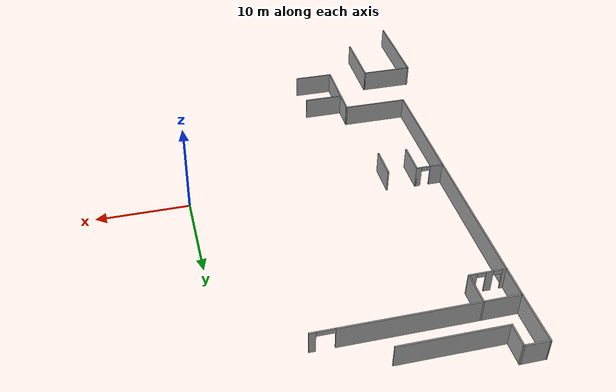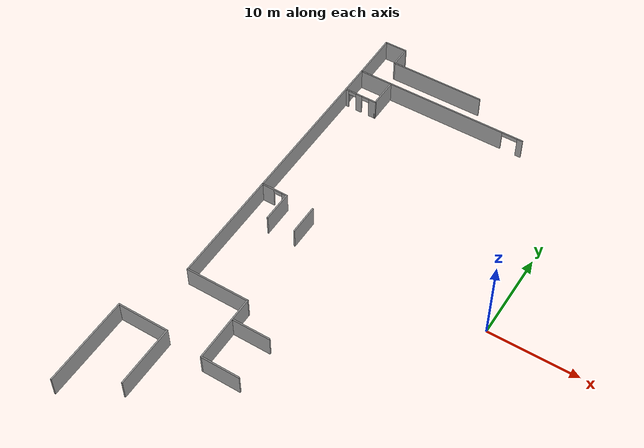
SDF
<sdf version="1.6">
 <model name="EDML">
  <link name="Wall_13">
   <pose>-17.6295 22.1597 0 0 -0 3.14157</pose>
   <visual name="Wall_13_Visual_2">
    <pose>-8.548 0 2.25 0 -0 0</pose>
    <geometry><box><size>1.814 0.15 0.5</size></box></geometry>
    <material>
     <script><uri>file://media/materials/scripts/gazebo.material</uri><name>Gazebo/Grey</name></script>
     <ambient>1 1 1 1</ambient>
     <diffuse>0.7 0.7 0.7 1</diffuse>
     <specular>0.01 0.01 0.01 1</specular>
     <emissive>0 0 0 1</emissive>
    </material>
   </visual>
   <visual name="Wall_13_Visual_0">
    <pose>-9.78149 0 1.25 0 -0 0</pose>
    <geometry><box><size>0.652987 0.15 2.5</size></box></geometry>
    <material>
     <script><uri>file://media/materials/scripts/gazebo.material</uri><name>Gazebo/Grey</name></script>
     <ambient>1 1 1 1</ambient>
     <diffuse>0.7 0.7 0.7 1</diffuse>
     <specular>0.01 0.01 0.01 1</specular>
     <emissive>0 0 0 1</emissive>
    </material>
   </visual>
   <visual name="Wall_13_Visual_1">
    <pose>1.23349 0 1.25 0 -0 0</pose>
    <geometry><box><size>17.749 0.15 2.5</size></box></geometry>
    <material>
     <script><uri>file://media/materials/scripts/gazebo.material</uri><name>Gazebo/Grey</name></script>
     <ambient>1 1 1 1</ambient>
     <diffuse>0.7 0.7 0.7 1</diffuse>
     <specular>0.01 0.01 0.01 1</specular>
     <emissive>0 0 0 1</emissive>
    </material>
   </visual>
   <collision name="Wall_13_Collision_0">
    <pose>-9.78149 0 1.25 0 -0 0</pose>
    <geometry><box><size>0.652987 0.15 2.5</size></box></geometry>
    <surface>
     <friction>
      <ode><mu>1</mu><mu2>1</mu2><fdir1>0 0 0</fdir1><slip1>0</slip1><slip2>0</slip2></ode>
      <torsional>
       <coefficient>1</coefficient>
       <patch_radius>0</patch_radius>
       <surface_radius>0</surface_radius>
       <use_patch_radius>1</use_patch_radius>
       <ode><slip>0</slip></ode>
      </torsional>
     </friction>
     <bounce><restitution_coefficient>0</restitution_coefficient><threshold>1e+06</threshold></bounce>
     <contact>
      <collide_without_contact>0</collide_without_contact>
      <collide_without_contact_bitmask>1</collide_without_contact_bitmask>
      <collide_bitmask>1</collide_bitmask>
      <ode>
       <soft_cfm>0</soft_cfm>
       <soft_erp>0.2</soft_erp>
       <kp>1e+13</kp>
       <kd>1</kd>
       <max_vel>0.01</max_vel>
       <min_depth>0</min_depth>
      </ode>
      <bullet>
       <split_impulse>1</split_impulse>
       <split_impulse_penetration_threshold>-0.01</split_impulse_penetration_threshold>
       <soft_cfm>0</soft_cfm>
       <soft_erp>0.2</soft_erp>
       <kp>1e+13</kp>
       <kd>1</kd>
      </bullet>
     </contact>
    </surface>
   </collision>
   <collision name="Wall_13_Collision_1">
    <pose>1.23349 0 1.25 0 -0 0</pose>
    <geometry><box><size>17.749 0.15 2.5</size></box></geometry>
    <surface>
     <friction>
      <ode><mu>1</mu><mu2>1</mu2><fdir1>0 0 0</fdir1><slip1>0</slip1><slip2>0</slip2></ode>
      <torsional>
       <coefficient>1</coefficient>
       <patch_radius>0</patch_radius>
       <surface_radius>0</surface_radius>
       <use_patch_radius>1</use_patch_radius>
       <ode><slip>0</slip></ode>
      </torsional>
     </friction>
     <bounce><restitution_coefficient>0</restitution_coefficient><threshold>1e+06</threshold></bounce>
     <contact>
      <collide_without_contact>0</collide_without_contact>
      <collide_without_contact_bitmask>1</collide_without_contact_bitmask>
      <collide_bitmask>1</collide_bitmask>
      <ode>
       <soft_cfm>0</soft_cfm>
       <soft_erp>0.2</soft_erp>
       <kp>1e+13</kp>
       <kd>1</kd>
       <max_vel>0.01</max_vel>
       <min_depth>0</min_depth>
      </ode>
      <bullet>
       <split_impulse>1</split_impulse>
       <split_impulse_penetration_threshold>-0.01</split_impulse_penetration_threshold>
       <soft_cfm>0</soft_cfm>
       <soft_erp>0.2</soft_erp>
       <kp>1e+13</kp>
       <kd>1</kd>
      </bullet>
     </contact>
    </surface>
   </collision>
   <collision name="Wall_13_Collision_2">
    <pose>-8.548 0 2.25 0 -0 0</pose>
    <geometry><box><size>1.814 0.15 0.5</size></box></geometry>
    <surface>
     <friction>
      <ode><mu>1</mu><mu2>1</mu2><fdir1>0 0 0</fdir1><slip1>0</slip1><slip2>0</slip2></ode>
      <torsional>
       <coefficient>1</coefficient>
       <patch_radius>0</patch_radius>
       <surface_radius>0</surface_radius>
       <use_patch_radius>1</use_patch_radius>
       <ode><slip>0</slip></ode>
      </torsional>
     </friction>
     <bounce><restitution_coefficient>0</restitution_coefficient><threshold>1e+06</threshold></bounce>
     <contact>
      <collide_without_contact>0</collide_without_contact>
      <collide_without_contact_bitmask>1</collide_without_contact_bitmask>
      <collide_bitmask>1</collide_bitmask>
      <ode>
       <soft_cfm>0</soft_cfm>
       <soft_erp>0.2</soft_erp>
       <kp>1e+13</kp>
       <kd>1</kd>
       <max_vel>0.01</max_vel>
       <min_depth>0</min_depth>
      </ode>
      <bullet>
       <split_impulse>1</split_impulse>
       <split_impulse_penetration_threshold>-0.01</split_impulse_penetration_threshold>
       <soft_cfm>0</soft_cfm>
       <soft_erp>0.2</soft_erp>
       <kp>1e+13</kp>
       <kd>1</kd>
      </bullet>
     </contact>
    </surface>
   </collision>
  </link>
  <link name="Wall_144">
   <pose>-23.8745 20.4654 0 0 0 -1.5708</pose>
   <visual name="Wall_144_Visual">
    <pose>0 0 1.25 0 -0 0</pose>
    <geometry><box><size>3.539 0.15 2.5</size></box></geometry>
    <material>
     <script><uri>file://media/materials/scripts/gazebo.material</uri><name>Gazebo/Grey</name></script>
     <ambient>1 1 1 1</ambient>
     <diffuse>0.7 0.7 0.7 1</diffuse>
     <specular>0.01 0.01 0.01 1</specular>
     <emissive>0 0 0 1</emissive>
    </material>
   </visual>
   <collision name="Wall_144_Collision">
    <pose>0 0 1.25 0 -0 0</pose>
    <geometry><box><size>3.539 0.15 2.5</size></box></geometry>
    <surface>
     <friction>
      <ode><mu>1</mu><mu2>1</mu2><fdir1>0 0 0</fdir1><slip1>0</slip1><slip2>0</slip2></ode>
      <torsional>
       <coefficient>1</coefficient>
       <patch_radius>0</patch_radius>
       <surface_radius>0</surface_radius>
       <use_patch_radius>1</use_patch_radius>
       <ode><slip>0</slip></ode>
      </torsional>
     </friction>
     <bounce><restitution_coefficient>0</restitution_coefficient><threshold>1e+06</threshold></bounce>
     <contact>
      <collide_without_contact>0</collide_without_contact>
      <collide_without_contact_bitmask>1</collide_without_contact_bitmask>
      <collide_bitmask>1</collide_bitmask>
      <ode>
       <soft_cfm>0</soft_cfm>
       <soft_erp>0.2</soft_erp>
       <kp>1e+13</kp>
       <kd>1</kd>
       <max_vel>0.01</max_vel>
       <min_depth>0</min_depth>
      </ode>
      <bullet>
       <split_impulse>1</split_impulse>
       <split_impulse_penetration_threshold>-0.01</split_impulse_penetration_threshold>
       <soft_cfm>0</soft_cfm>
       <soft_erp>0.2</soft_erp>
       <kp>1e+13</kp>
       <kd>1</kd>
      </bullet>
     </contact>
    </surface>
   </collision>
  </link>
  <link name="Wall_146">
   <pose>-27.6625 12.2514 0 0 -0 1.5708</pose>
   <visual name="Wall_146_Visual">
    <pose>0 0 1.25 0 -0 0</pose>
    <geometry><box><size>19.9666 0.15 2.5</size></box></geometry>
    <material>
     <script><uri>file://media/materials/scripts/gazebo.material</uri><name>Gazebo/Grey</name></script>
     <ambient>1 1 1 1</ambient>
     <diffuse>0.7 0.7 0.7 1</diffuse>
     <specular>0.01 0.01 0.01 1</specular>
     <emissive>0 0 0 1</emissive>
    </material>
   </visual>
   <collision name="Wall_146_Collision">
    <pose>0 0 1.25 0 -0 0</pose>
    <geometry><box><size>19.9666 0.15 2.5</size></box></geometry>
    <surface>
     <friction>
      <ode><mu>1</mu><mu2>1</mu2><fdir1>0 0 0</fdir1><slip1>0</slip1><slip2>0</slip2></ode>
      <torsional>
       <coefficient>1</coefficient>
       <patch_radius>0</patch_radius>
       <surface_radius>0</surface_radius>
       <use_patch_radius>1</use_patch_radius>
       <ode><slip>0</slip></ode>
      </torsional>
     </friction>
     <bounce><restitution_coefficient>0</restitution_coefficient><threshold>1e+06</threshold></bounce>
     <contact>
      <collide_without_contact>0</collide_without_contact>
      <collide_without_contact_bitmask>1</collide_without_contact_bitmask>
      <collide_bitmask>1</collide_bitmask>
      <ode>
       <soft_cfm>0</soft_cfm>
       <soft_erp>0.2</soft_erp>
       <kp>1e+13</kp>
       <kd>1</kd>
       <max_vel>0.01</max_vel>
       <min_depth>0</min_depth>
      </ode>
      <bullet>
       <split_impulse>1</split_impulse>
       <split_impulse_penetration_threshold>-0.01</split_impulse_penetration_threshold>
       <soft_cfm>0</soft_cfm>
       <soft_erp>0.2</soft_erp>
       <kp>1e+13</kp>
       <kd>1</kd>
      </bullet>
     </contact>
    </surface>
   </collision>
  </link>
  <link name="Wall_156">
   <pose>-25.7685 18.7709 0 0 -0 3.14159</pose>
   <visual name="Wall_156_Visual_0">
    <pose>-1.52296 0 1.25 0 -0 0</pose>
    <geometry><box><size>0.892081 0.15 2.5</size></box></geometry>
    <material>
     <script><uri>file://media/materials/scripts/gazebo.material</uri><name>Gazebo/Grey</name></script>
     <ambient>1 1 1 1</ambient>
     <diffuse>0.7 0.7 0.7 1</diffuse>
     <specular>0.01 0.01 0.01 1</specular>
     <emissive>0 0 0 1</emissive>
    </material>
   </visual>
   <visual name="Wall_156_Visual_1">
    <pose>0.192223 0 1.25 0 -0 0</pose>
    <geometry><box><size>0.738283 0.15 2.5</size></box></geometry>
    <material>
     <script><uri>file://media/materials/scripts/gazebo.material</uri><name>Gazebo/Grey</name></script>
     <ambient>1 1 1 1</ambient>
     <diffuse>0.7 0.7 0.7 1</diffuse>
     <specular>0.01 0.01 0.01 1</specular>
     <emissive>0 0 0 1</emissive>
    </material>
   </visual>
   <visual name="Wall_156_Visual_2">
    <pose>1.71518 0 1.25 0 -0 0</pose>
    <geometry><box><size>0.507636 0.15 2.5</size></box></geometry>
    <material>
     <script><uri>file://media/materials/scripts/gazebo.material</uri><name>Gazebo/Grey</name></script>
     <ambient>1 1 1 1</ambient>
     <diffuse>0.7 0.7 0.7 1</diffuse>
     <specular>0.01 0.01 0.01 1</specular>
     <emissive>0 0 0 1</emissive>
    </material>
   </visual>
   <visual name="Wall_156_Visual_3">
    <pose>-0.626919 0 2.25 0 -0 0</pose>
    <geometry><box><size>0.9 0.15 0.5</size></box></geometry>
    <material>
     <script><uri>file://media/materials/scripts/gazebo.material</uri><name>Gazebo/Grey</name></script>
     <ambient>1 1 1 1</ambient>
     <diffuse>0.7 0.7 0.7 1</diffuse>
     <specular>0.01 0.01 0.01 1</specular>
     <emissive>0 0 0 1</emissive>
    </material>
   </visual>
   <visual name="Wall_156_Visual_4">
    <pose>1.01136 0 2.25 0 -0 0</pose>
    <geometry><box><size>0.9 0.15 0.5</size></box></geometry>
    <material>
     <script><uri>file://media/materials/scripts/gazebo.material</uri><name>Gazebo/Grey</name></script>
     <ambient>1 1 1 1</ambient>
     <diffuse>0.7 0.7 0.7 1</diffuse>
     <specular>0.01 0.01 0.01 1</specular>
     <emissive>0 0 0 1</emissive>
    </material>
   </visual>
   <collision name="Wall_156_Collision_1">
    <pose>0.192223 0 1.25 0 -0 0</pose>
    <geometry><box><size>0.738283 0.15 2.5</size></box></geometry>
    <surface>
     <friction>
      <ode><mu>1</mu><mu2>1</mu2><fdir1>0 0 0</fdir1><slip1>0</slip1><slip2>0</slip2></ode>
      <torsional>
       <coefficient>1</coefficient>
       <patch_radius>0</patch_radius>
       <surface_radius>0</surface_radius>
       <use_patch_radius>1</use_patch_radius>
       <ode><slip>0</slip></ode>
      </torsional>
     </friction>
     <bounce><restitution_coefficient>0</restitution_coefficient><threshold>1e+06</threshold></bounce>
     <contact>
      <collide_without_contact>0</collide_without_contact>
      <collide_without_contact_bitmask>1</collide_without_contact_bitmask>
      <collide_bitmask>1</collide_bitmask>
      <ode>
       <soft_cfm>0</soft_cfm>
       <soft_erp>0.2</soft_erp>
       <kp>1e+13</kp>
       <kd>1</kd>
       <max_vel>0.01</max_vel>
       <min_depth>0</min_depth>
      </ode>
      <bullet>
       <split_impulse>1</split_impulse>
       <split_impulse_penetration_threshold>-0.01</split_impulse_penetration_threshold>
       <soft_cfm>0</soft_cfm>
       <soft_erp>0.2</soft_erp>
       <kp>1e+13</kp>
       <kd>1</kd>
      </bullet>
     </contact>
    </surface>
   </collision>
   <collision name="Wall_156_Collision_0">
    <pose>-1.52296 0 1.25 0 -0 0</pose>
    <geometry><box><size>0.892081 0.15 2.5</size></box></geometry>
    <surface>
     <friction>
      <ode><mu>1</mu><mu2>1</mu2><fdir1>0 0 0</fdir1><slip1>0</slip1><slip2>0</slip2></ode>
      <torsional>
       <coefficient>1</coefficient>
       <patch_radius>0</patch_radius>
       <surface_radius>0</surface_radius>
       <use_patch_radius>1</use_patch_radius>
       <ode><slip>0</slip></ode>
      </torsional>
     </friction>
     <bounce><restitution_coefficient>0</restitution_coefficient><threshold>1e+06</threshold></bounce>
     <contact>
      <collide_without_contact>0</collide_without_contact>
      <collide_without_contact_bitmask>1</collide_without_contact_bitmask>
      <collide_bitmask>1</collide_bitmask>
      <ode>
       <soft_cfm>0</soft_cfm>
       <soft_erp>0.2</soft_erp>
       <kp>1e+13</kp>
       <kd>1</kd>
       <max_vel>0.01</max_vel>
       <min_depth>0</min_depth>
      </ode>
      <bullet>
       <split_impulse>1</split_impulse>
       <split_impulse_penetration_threshold>-0.01</split_impulse_penetration_threshold>
       <soft_cfm>0</soft_cfm>
       <soft_erp>0.2</soft_erp>
       <kp>1e+13</kp>
       <kd>1</kd>
      </bullet>
     </contact>
    </surface>
   </collision>
   <collision name="Wall_156_Collision_2">
    <pose>1.71518 0 1.25 0 -0 0</pose>
    <geometry><box><size>0.507636 0.15 2.5</size></box></geometry>
    <surface>
     <friction>
      <ode><mu>1</mu><mu2>1</mu2><fdir1>0 0 0</fdir1><slip1>0</slip1><slip2>0</slip2></ode>
      <torsional>
       <coefficient>1</coefficient>
       <patch_radius>0</patch_radius>
       <surface_radius>0</surface_radius>
       <use_patch_radius>1</use_patch_radius>
       <ode><slip>0</slip></ode>
      </torsional>
     </friction>
     <bounce><restitution_coefficient>0</restitution_coefficient><threshold>1e+06</threshold></bounce>
     <contact>
      <collide_without_contact>0</collide_without_contact>
      <collide_without_contact_bitmask>1</collide_without_contact_bitmask>
      <collide_bitmask>1</collide_bitmask>
      <ode>
       <soft_cfm>0</soft_cfm>
       <soft_erp>0.2</soft_erp>
       <kp>1e+13</kp>
       <kd>1</kd>
       <max_vel>0.01</max_vel>
       <min_depth>0</min_depth>
      </ode>
      <bullet>
       <split_impulse>1</split_impulse>
       <split_impulse_penetration_threshold>-0.01</split_impulse_penetration_threshold>
       <soft_cfm>0</soft_cfm>
       <soft_erp>0.2</soft_erp>
       <kp>1e+13</kp>
       <kd>1</kd>
      </bullet>
     </contact>
    </surface>
   </collision>
   <collision name="Wall_156_Collision_3">
    <pose>-0.626919 0 2.25 0 -0 0</pose>
    <geometry><box><size>0.9 0.15 0.5</size></box></geometry>
    <surface>
     <friction>
      <ode><mu>1</mu><mu2>1</mu2><fdir1>0 0 0</fdir1><slip1>0</slip1><slip2>0</slip2></ode>
      <torsional>
       <coefficient>1</coefficient>
       <patch_radius>0</patch_radius>
       <surface_radius>0</surface_radius>
       <use_patch_radius>1</use_patch_radius>
       <ode><slip>0</slip></ode>
      </torsional>
     </friction>
     <bounce><restitution_coefficient>0</restitution_coefficient><threshold>1e+06</threshold></bounce>
     <contact>
      <collide_without_contact>0</collide_without_contact>
      <collide_without_contact_bitmask>1</collide_without_contact_bitmask>
      <collide_bitmask>1</collide_bitmask>
      <ode>
       <soft_cfm>0</soft_cfm>
       <soft_erp>0.2</soft_erp>
       <kp>1e+13</kp>
       <kd>1</kd>
       <max_vel>0.01</max_vel>
       <min_depth>0</min_depth>
      </ode>
      <bullet>
       <split_impulse>1</split_impulse>
       <split_impulse_penetration_threshold>-0.01</split_impulse_penetration_threshold>
       <soft_cfm>0</soft_cfm>
       <soft_erp>0.2</soft_erp>
       <kp>1e+13</kp>
       <kd>1</kd>
      </bullet>
     </contact>
    </surface>
   </collision>
   <collision name="Wall_156_Collision_4">
    <pose>1.01136 0 2.25 0 -0 0</pose>
    <geometry><box><size>0.9 0.15 0.5</size></box></geometry>
    <surface>
     <friction>
      <ode><mu>1</mu><mu2>1</mu2><fdir1>0 0 0</fdir1><slip1>0</slip1><slip2>0</slip2></ode>
      <torsional>
       <coefficient>1</coefficient>
       <patch_radius>0</patch_radius>
       <surface_radius>0</surface_radius>
       <use_patch_radius>1</use_patch_radius>
       <ode><slip>0</slip></ode>
      </torsional>
     </friction>
     <bounce><restitution_coefficient>0</restitution_coefficient><threshold>1e+06</threshold></bounce>
     <contact>
      <collide_without_contact>0</collide_without_contact>
      <collide_without_contact_bitmask>1</collide_without_contact_bitmask>
      <collide_bitmask>1</collide_bitmask>
      <ode>
       <soft_cfm>0</soft_cfm>
       <soft_erp>0.2</soft_erp>
       <kp>1e+13</kp>
       <kd>1</kd>
       <max_vel>0.01</max_vel>
       <min_depth>0</min_depth>
      </ode>
      <bullet>
       <split_impulse>1</split_impulse>
       <split_impulse_penetration_threshold>-0.01</split_impulse_penetration_threshold>
       <soft_cfm>0</soft_cfm>
       <soft_erp>0.2</soft_erp>
       <kp>1e+13</kp>
       <kd>1</kd>
      </bullet>
     </contact>
    </surface>
   </collision>
  </link>
  <link name="Wall_2">
   <pose>-30.7265 -22.6753 0 0 -0 1.5708</pose>
   <visual name="Wall_2_Visual">
    <pose>0 0 1.25 0 -0 0</pose>
    <geometry><box><size>10.14 0.15 2.5</size></box></geometry>
    <material>
     <script><uri>file://media/materials/scripts/gazebo.material</uri><name>Gazebo/Grey</name></script>
     <ambient>1 1 1 1</ambient>
     <diffuse>0.7 0.7 0.7 1</diffuse>
     <specular>0.01 0.01 0.01 1</specular>
     <emissive>0 0 0 1</emissive>
    </material>
   </visual>
   <collision name="Wall_2_Collision">
    <pose>0 0 1.25 0 -0 0</pose>
    <geometry><box><size>10.14 0.15 2.5</size></box></geometry>
    <surface>
     <friction>
      <ode><mu>1</mu><mu2>1</mu2><fdir1>0 0 0</fdir1><slip1>0</slip1><slip2>0</slip2></ode>
      <torsional>
       <coefficient>1</coefficient>
       <patch_radius>0</patch_radius>
       <surface_radius>0</surface_radius>
       <use_patch_radius>1</use_patch_radius>
       <ode><slip>0</slip></ode>
      </torsional>
     </friction>
     <bounce><restitution_coefficient>0</restitution_coefficient><threshold>1e+06</threshold></bounce>
     <contact>
      <collide_without_contact>0</collide_without_contact>
      <collide_without_contact_bitmask>1</collide_without_contact_bitmask>
      <collide_bitmask>1</collide_bitmask>
      <ode>
       <soft_cfm>0</soft_cfm>
       <soft_erp>0.2</soft_erp>
       <kp>1e+13</kp>
       <kd>1</kd>
       <max_vel>0.01</max_vel>
       <min_depth>0</min_depth>
      </ode>
      <bullet>
       <split_impulse>1</split_impulse>
       <split_impulse_penetration_threshold>-0.01</split_impulse_penetration_threshold>
       <soft_cfm>0</soft_cfm>
       <soft_erp>0.2</soft_erp>
       <kp>1e+13</kp>
       <kd>1</kd>
      </bullet>
     </contact>
    </surface>
   </collision>
  </link>
  <link name="Wall_25">
   <pose>-27.6895 24.9147 0 0 -0 1.5806</pose>
   <visual name="Wall_25_Visual">
    <pose>0 0 1.25 0 -0 0</pose>
    <geometry><box><size>5.66 0.15 2.5</size></box></geometry>
    <material>
     <script><uri>file://media/materials/scripts/gazebo.material</uri><name>Gazebo/Grey</name></script>
     <ambient>1 1 1 1</ambient>
     <diffuse>0.7 0.7 0.7 1</diffuse>
     <specular>0.01 0.01 0.01 1</specular>
     <emissive>0 0 0 1</emissive>
    </material>
   </visual>
   <collision name="Wall_25_Collision">
    <pose>0 0 1.25 0 -0 0</pose>
    <geometry><box><size>5.66 0.15 2.5</size></box></geometry>
    <surface>
     <friction>
      <ode><mu>1</mu><mu2>1</mu2><fdir1>0 0 0</fdir1><slip1>0</slip1><slip2>0</slip2></ode>
      <torsional>
       <coefficient>1</coefficient>
       <patch_radius>0</patch_radius>
       <surface_radius>0</surface_radius>
       <use_patch_radius>1</use_patch_radius>
       <ode><slip>0</slip></ode>
      </torsional>
     </friction>
     <bounce><restitution_coefficient>0</restitution_coefficient><threshold>1e+06</threshold></bounce>
     <contact>
      <collide_without_contact>0</collide_without_contact>
      <collide_without_contact_bitmask>1</collide_without_contact_bitmask>
      <collide_bitmask>1</collide_bitmask>
      <ode>
       <soft_cfm>0</soft_cfm>
       <soft_erp>0.2</soft_erp>
       <kp>1e+13</kp>
       <kd>1</kd>
       <max_vel>0.01</max_vel>
       <min_depth>0</min_depth>
      </ode>
      <bullet>
       <split_impulse>1</split_impulse>
       <split_impulse_penetration_threshold>-0.01</split_impulse_penetration_threshold>
       <soft_cfm>0</soft_cfm>
       <soft_erp>0.2</soft_erp>
       <kp>1e+13</kp>
       <kd>1</kd>
      </bullet>
     </contact>
    </surface>
   </collision>
  </link>
  <link name="Wall_27">
   <pose>-26.4565 27.6695 0 0 -0 0</pose>
   <visual name="Wall_27_Visual">
    <pose>0 0 1.25 0 -0 0</pose>
    <geometry><box><size>2.67 0.15 2.5</size></box></geometry>
    <material>
     <script><uri>file://media/materials/scripts/gazebo.material</uri><name>Gazebo/Grey</name></script>
     <ambient>1 1 1 1</ambient>
     <diffuse>0.7 0.7 0.7 1</diffuse>
     <specular>0.01 0.01 0.01 1</specular>
     <emissive>0 0 0 1</emissive>
    </material>
   </visual>
   <collision name="Wall_27_Collision">
    <pose>0 0 1.25 0 -0 0</pose>
    <geometry><box><size>2.67 0.15 2.5</size></box></geometry>
    <surface>
     <friction>
      <ode><mu>1</mu><mu2>1</mu2><fdir1>0 0 0</fdir1><slip1>0</slip1><slip2>0</slip2></ode>
      <torsional>
       <coefficient>1</coefficient>
       <patch_radius>0</patch_radius>
       <surface_radius>0</surface_radius>
       <use_patch_radius>1</use_patch_radius>
       <ode><slip>0</slip></ode>
      </torsional>
     </friction>
     <bounce><restitution_coefficient>0</restitution_coefficient><threshold>1e+06</threshold></bounce>
     <contact>
      <collide_without_contact>0</collide_without_contact>
      <collide_without_contact_bitmask>1</collide_without_contact_bitmask>
      <collide_bitmask>1</collide_bitmask>
      <ode>
       <soft_cfm>0</soft_cfm>
       <soft_erp>0.2</soft_erp>
       <kp>1e+13</kp>
       <kd>1</kd>
       <max_vel>0.01</max_vel>
       <min_depth>0</min_depth>
      </ode>
      <bullet>
       <split_impulse>1</split_impulse>
       <split_impulse_penetration_threshold>-0.01</split_impulse_penetration_threshold>
       <soft_cfm>0</soft_cfm>
       <soft_erp>0.2</soft_erp>
       <kp>1e+13</kp>
       <kd>1</kd>
      </bullet>
     </contact>
    </surface>
   </collision>
  </link>
  <link name="Wall_31">
   <pose>-25.1965 26.4697 0 0 0 -1.57078</pose>
   <visual name="Wall_31_Visual">
    <pose>0 0 1.25 0 -0 0</pose>
    <geometry><box><size>2.55 0.15 2.5</size></box></geometry>
    <material>
     <script><uri>file://media/materials/scripts/gazebo.material</uri><name>Gazebo/Grey</name></script>
     <ambient>1 1 1 1</ambient>
     <diffuse>0.7 0.7 0.7 1</diffuse>
     <specular>0.01 0.01 0.01 1</specular>
     <emissive>0 0 0 1</emissive>
    </material>
   </visual>
   <collision name="Wall_31_Collision">
    <pose>0 0 1.25 0 -0 0</pose>
    <geometry><box><size>2.55 0.15 2.5</size></box></geometry>
    <surface>
     <friction>
      <ode><mu>1</mu><mu2>1</mu2><fdir1>0 0 0</fdir1><slip1>0</slip1><slip2>0</slip2></ode>
      <torsional>
       <coefficient>1</coefficient>
       <patch_radius>0</patch_radius>
       <surface_radius>0</surface_radius>
       <use_patch_radius>1</use_patch_radius>
       <ode><slip>0</slip></ode>
      </torsional>
     </friction>
     <bounce><restitution_coefficient>0</restitution_coefficient><threshold>1e+06</threshold></bounce>
     <contact>
      <collide_without_contact>0</collide_without_contact>
      <collide_without_contact_bitmask>1</collide_without_contact_bitmask>
      <collide_bitmask>1</collide_bitmask>
      <ode>
       <soft_cfm>0</soft_cfm>
       <soft_erp>0.2</soft_erp>
       <kp>1e+13</kp>
       <kd>1</kd>
       <max_vel>0.01</max_vel>
       <min_depth>0</min_depth>
      </ode>
      <bullet>
       <split_impulse>1</split_impulse>
       <split_impulse_penetration_threshold>-0.01</split_impulse_penetration_threshold>
       <soft_cfm>0</soft_cfm>
       <soft_erp>0.2</soft_erp>
       <kp>1e+13</kp>
       <kd>1</kd>
      </bullet>
     </contact>
    </surface>
   </collision>
  </link>
  <link name="Wall_32">
   <pose>-19.8035 25.2699 0 0 -0 0</pose>
   <visual name="Wall_32_Visual">
    <pose>0 0 1.25 0 -0 0</pose>
    <geometry><box><size>10.936 0.15 2.5</size></box></geometry>
    <material>
     <script><uri>file://media/materials/scripts/gazebo.material</uri><name>Gazebo/Grey</name></script>
     <ambient>1 1 1 1</ambient>
     <diffuse>0.7 0.7 0.7 1</diffuse>
     <specular>0.01 0.01 0.01 1</specular>
     <emissive>0 0 0 1</emissive>
    </material>
   </visual>
   <collision name="Wall_32_Collision">
    <pose>0 0 1.25 0 -0 0</pose>
    <geometry><box><size>10.936 0.15 2.5</size></box></geometry>
    <surface>
     <friction>
      <ode><mu>1</mu><mu2>1</mu2><fdir1>0 0 0</fdir1><slip1>0</slip1><slip2>0</slip2></ode>
      <torsional>
       <coefficient>1</coefficient>
       <patch_radius>0</patch_radius>
       <surface_radius>0</surface_radius>
       <use_patch_radius>1</use_patch_radius>
       <ode><slip>0</slip></ode>
      </torsional>
     </friction>
     <bounce><restitution_coefficient>0</restitution_coefficient><threshold>1e+06</threshold></bounce>
     <contact>
      <collide_without_contact>0</collide_without_contact>
      <collide_without_contact_bitmask>1</collide_without_contact_bitmask>
      <collide_bitmask>1</collide_bitmask>
      <ode>
       <soft_cfm>0</soft_cfm>
       <soft_erp>0.2</soft_erp>
       <kp>1e+13</kp>
       <kd>1</kd>
       <max_vel>0.01</max_vel>
       <min_depth>0</min_depth>
      </ode>
      <bullet>
       <split_impulse>1</split_impulse>
       <split_impulse_penetration_threshold>-0.01</split_impulse_penetration_threshold>
       <soft_cfm>0</soft_cfm>
       <soft_erp>0.2</soft_erp>
       <kp>1e+13</kp>
       <kd>1</kd>
      </bullet>
     </contact>
    </surface>
   </collision>
  </link>
  <link name="Wall_4">
   <pose>-27.8615 -17.6805 0 0 -0 0</pose>
   <visual name="Wall_4_Visual">
    <pose>0 0 1.25 0 -0 0</pose>
    <geometry><box><size>5.88 0.15 2.5</size></box></geometry>
    <material>
     <script><uri>file://media/materials/scripts/gazebo.material</uri><name>Gazebo/Grey</name></script>
     <ambient>1 1 1 1</ambient>
     <diffuse>0.7 0.7 0.7 1</diffuse>
     <specular>0.01 0.01 0.01 1</specular>
     <emissive>0 0 0 1</emissive>
    </material>
   </visual>
   <collision name="Wall_4_Collision">
    <pose>0 0 1.25 0 -0 0</pose>
    <geometry><box><size>5.88 0.15 2.5</size></box></geometry>
    <surface>
     <friction>
      <ode><mu>1</mu><mu2>1</mu2><fdir1>0 0 0</fdir1><slip1>0</slip1><slip2>0</slip2></ode>
      <torsional>
       <coefficient>1</coefficient>
       <patch_radius>0</patch_radius>
       <surface_radius>0</surface_radius>
       <use_patch_radius>1</use_patch_radius>
       <ode><slip>0</slip></ode>
      </torsional>
     </friction>
     <bounce><restitution_coefficient>0</restitution_coefficient><threshold>1e+06</threshold></bounce>
     <contact>
      <collide_without_contact>0</collide_without_contact>
      <collide_without_contact_bitmask>1</collide_without_contact_bitmask>
      <collide_bitmask>1</collide_bitmask>
      <ode>
       <soft_cfm>0</soft_cfm>
       <soft_erp>0.2</soft_erp>
       <kp>1e+13</kp>
       <kd>1</kd>
       <max_vel>0.01</max_vel>
       <min_depth>0</min_depth>
      </ode>
      <bullet>
       <split_impulse>1</split_impulse>
       <split_impulse_penetration_threshold>-0.01</split_impulse_penetration_threshold>
       <soft_cfm>0</soft_cfm>
       <soft_erp>0.2</soft_erp>
       <kp>1e+13</kp>
       <kd>1</kd>
      </bullet>
     </contact>
    </surface>
   </collision>
  </link>
  <link name="Wall_59">
   <pose>-20.5395 -14.5349 0 0 -0 1.5708</pose>
   <visual name="Wall_59_Visual">
    <pose>0 0 1.25 0 -0 0</pose>
    <geometry><box><size>7.74 0.15 2.5</size></box></geometry>
    <material>
     <script><uri>file://media/materials/scripts/gazebo.material</uri><name>Gazebo/Grey</name></script>
     <ambient>1 1 1 1</ambient>
     <diffuse>0.7 0.7 0.7 1</diffuse>
     <specular>0.01 0.01 0.01 1</specular>
     <emissive>0 0 0 1</emissive>
    </material>
   </visual>
   <collision name="Wall_59_Collision">
    <pose>0 0 1.25 0 -0 0</pose>
    <geometry><box><size>7.74 0.15 2.5</size></box></geometry>
    <surface>
     <friction>
      <ode><mu>1</mu><mu2>1</mu2><fdir1>0 0 0</fdir1><slip1>0</slip1><slip2>0</slip2></ode>
      <torsional>
       <coefficient>1</coefficient>
       <patch_radius>0</patch_radius>
       <surface_radius>0</surface_radius>
       <use_patch_radius>1</use_patch_radius>
       <ode><slip>0</slip></ode>
      </torsional>
     </friction>
     <bounce><restitution_coefficient>0</restitution_coefficient><threshold>1e+06</threshold></bounce>
     <contact>
      <collide_without_contact>0</collide_without_contact>
      <collide_without_contact_bitmask>1</collide_without_contact_bitmask>
      <collide_bitmask>1</collide_bitmask>
      <ode>
       <soft_cfm>0</soft_cfm>
       <soft_erp>0.2</soft_erp>
       <kp>1e+13</kp>
       <kd>1</kd>
       <max_vel>0.01</max_vel>
       <min_depth>0</min_depth>
      </ode>
      <bullet>
       <split_impulse>1</split_impulse>
       <split_impulse_penetration_threshold>-0.01</split_impulse_penetration_threshold>
       <soft_cfm>0</soft_cfm>
       <soft_erp>0.2</soft_erp>
       <kp>1e+13</kp>
       <kd>1</kd>
      </bullet>
     </contact>
    </surface>
   </collision>
  </link>
  <link name="Wall_6">
   <pose>-24.9965 -21.0705 0 0 0 -1.5708</pose>
   <visual name="Wall_6_Visual">
    <pose>0 0 1.25 0 -0 0</pose>
    <geometry><box><size>6.93 0.15 2.5</size></box></geometry>
    <material>
     <script><uri>file://media/materials/scripts/gazebo.material</uri><name>Gazebo/Grey</name></script>
     <ambient>1 1 1 1</ambient>
     <diffuse>0.7 0.7 0.7 1</diffuse>
     <specular>0.01 0.01 0.01 1</specular>
     <emissive>0 0 0 1</emissive>
    </material>
   </visual>
   <collision name="Wall_6_Collision">
    <pose>0 0 1.25 0 -0 0</pose>
    <geometry><box><size>6.93 0.15 2.5</size></box></geometry>
    <surface>
     <friction>
      <ode><mu>1</mu><mu2>1</mu2><fdir1>0 0 0</fdir1><slip1>0</slip1><slip2>0</slip2></ode>
      <torsional>
       <coefficient>1</coefficient>
       <patch_radius>0</patch_radius>
       <surface_radius>0</surface_radius>
       <use_patch_radius>1</use_patch_radius>
       <ode><slip>0</slip></ode>
      </torsional>
     </friction>
     <bounce><restitution_coefficient>0</restitution_coefficient><threshold>1e+06</threshold></bounce>
     <contact>
      <collide_without_contact>0</collide_without_contact>
      <collide_without_contact_bitmask>1</collide_without_contact_bitmask>
      <collide_bitmask>1</collide_bitmask>
      <ode>
       <soft_cfm>0</soft_cfm>
       <soft_erp>0.2</soft_erp>
       <kp>1e+13</kp>
       <kd>1</kd>
       <max_vel>0.01</max_vel>
       <min_depth>0</min_depth>
      </ode>
      <bullet>
       <split_impulse>1</split_impulse>
       <split_impulse_penetration_threshold>-0.01</split_impulse_penetration_threshold>
       <soft_cfm>0</soft_cfm>
       <soft_erp>0.2</soft_erp>
       <kp>1e+13</kp>
       <kd>1</kd>
      </bullet>
     </contact>
    </surface>
   </collision>
  </link>
  <link name="Wall_61">
   <pose>-18.4075 -18.3297 0 0 -0 0</pose>
   <visual name="Wall_61_Visual">
    <pose>0 0 1.25 0 -0 0</pose>
    <geometry><box><size>4.414 0.15 2.5</size></box></geometry>
    <material>
     <script><uri>file://media/materials/scripts/gazebo.material</uri><name>Gazebo/Grey</name></script>
     <ambient>1 1 1 1</ambient>
     <diffuse>0.7 0.7 0.7 1</diffuse>
     <specular>0.01 0.01 0.01 1</specular>
     <emissive>0 0 0 1</emissive>
    </material>
   </visual>
   <collision name="Wall_61_Collision">
    <pose>0 0 1.25 0 -0 0</pose>
    <geometry><box><size>4.414 0.15 2.5</size></box></geometry>
    <surface>
     <friction>
      <ode><mu>1</mu><mu2>1</mu2><fdir1>0 0 0</fdir1><slip1>0</slip1><slip2>0</slip2></ode>
      <torsional>
       <coefficient>1</coefficient>
       <patch_radius>0</patch_radius>
       <surface_radius>0</surface_radius>
       <use_patch_radius>1</use_patch_radius>
       <ode><slip>0</slip></ode>
      </torsional>
     </friction>
     <bounce><restitution_coefficient>0</restitution_coefficient><threshold>1e+06</threshold></bounce>
     <contact>
      <collide_without_contact>0</collide_without_contact>
      <collide_without_contact_bitmask>1</collide_without_contact_bitmask>
      <collide_bitmask>1</collide_bitmask>
      <ode>
       <soft_cfm>0</soft_cfm>
       <soft_erp>0.2</soft_erp>
       <kp>1e+13</kp>
       <kd>1</kd>
       <max_vel>0.01</max_vel>
       <min_depth>0</min_depth>
      </ode>
      <bullet>
       <split_impulse>1</split_impulse>
       <split_impulse_penetration_threshold>-0.01</split_impulse_penetration_threshold>
       <soft_cfm>0</soft_cfm>
       <soft_erp>0.2</soft_erp>
       <kp>1e+13</kp>
       <kd>1</kd>
      </bullet>
     </contact>
    </surface>
   </collision>
  </link>
  <link name="Wall_70">
   <pose>-18.4125 -13.3071 0 0 -0 0</pose>
   <visual name="Wall_70_Visual">
    <pose>0 0 1.25 0 -0 0</pose>
    <geometry><box><size>4.412 0.15 2.5</size></box></geometry>
    <material>
     <script><uri>file://media/materials/scripts/gazebo.material</uri><name>Gazebo/Grey</name></script>
     <ambient>1 1 1 1</ambient>
     <diffuse>0.7 0.7 0.7 1</diffuse>
     <specular>0.01 0.01 0.01 1</specular>
     <emissive>0 0 0 1</emissive>
    </material>
   </visual>
   <collision name="Wall_70_Collision">
    <pose>0 0 1.25 0 -0 0</pose>
    <geometry><box><size>4.412 0.15 2.5</size></box></geometry>
    <surface>
     <friction>
      <ode><mu>1</mu><mu2>1</mu2><fdir1>0 0 0</fdir1><slip1>0</slip1><slip2>0</slip2></ode>
      <torsional>
       <coefficient>1</coefficient>
       <patch_radius>0</patch_radius>
       <surface_radius>0</surface_radius>
       <use_patch_radius>1</use_patch_radius>
       <ode><slip>0</slip></ode>
      </torsional>
     </friction>
     <bounce><restitution_coefficient>0</restitution_coefficient><threshold>1e+06</threshold></bounce>
     <contact>
      <collide_without_contact>0</collide_without_contact>
      <collide_without_contact_bitmask>1</collide_without_contact_bitmask>
      <collide_bitmask>1</collide_bitmask>
      <ode>
       <soft_cfm>0</soft_cfm>
       <soft_erp>0.2</soft_erp>
       <kp>1e+13</kp>
       <kd>1</kd>
       <max_vel>0.01</max_vel>
       <min_depth>0</min_depth>
      </ode>
      <bullet>
       <split_impulse>1</split_impulse>
       <split_impulse_penetration_threshold>-0.01</split_impulse_penetration_threshold>
       <soft_cfm>0</soft_cfm>
       <soft_erp>0.2</soft_erp>
       <kp>1e+13</kp>
       <kd>1</kd>
      </bullet>
     </contact>
    </surface>
   </collision>
  </link>
  <link name="Wall_75">
   <pose>-24.101 -10.7401 0 0 -0 3.14159</pose>
   <visual name="Wall_75_Visual">
    <pose>0 0 1.25 0 -0 0</pose>
    <geometry><box><size>7.273 0.15 2.5</size></box></geometry>
    <material>
     <script><uri>file://media/materials/scripts/gazebo.material</uri><name>Gazebo/Grey</name></script>
     <ambient>1 1 1 1</ambient>
     <diffuse>0.7 0.7 0.7 1</diffuse>
     <specular>0.01 0.01 0.01 1</specular>
     <emissive>0 0 0 1</emissive>
    </material>
   </visual>
   <collision name="Wall_75_Collision">
    <pose>0 0 1.25 0 -0 0</pose>
    <geometry><box><size>7.273 0.15 2.5</size></box></geometry>
    <surface>
     <friction>
      <ode><mu>1</mu><mu2>1</mu2><fdir1>0 0 0</fdir1><slip1>0</slip1><slip2>0</slip2></ode>
      <torsional>
       <coefficient>1</coefficient>
       <patch_radius>0</patch_radius>
       <surface_radius>0</surface_radius>
       <use_patch_radius>1</use_patch_radius>
       <ode><slip>0</slip></ode>
      </torsional>
     </friction>
     <bounce><restitution_coefficient>0</restitution_coefficient><threshold>1e+06</threshold></bounce>
     <contact>
      <collide_without_contact>0</collide_without_contact>
      <collide_without_contact_bitmask>1</collide_without_contact_bitmask>
      <collide_bitmask>1</collide_bitmask>
      <ode>
       <soft_cfm>0</soft_cfm>
       <soft_erp>0.2</soft_erp>
       <kp>1e+13</kp>
       <kd>1</kd>
       <max_vel>0.01</max_vel>
       <min_depth>0</min_depth>
      </ode>
      <bullet>
       <split_impulse>1</split_impulse>
       <split_impulse_penetration_threshold>-0.01</split_impulse_penetration_threshold>
       <soft_cfm>0</soft_cfm>
       <soft_erp>0.2</soft_erp>
       <kp>1e+13</kp>
       <kd>1</kd>
      </bullet>
     </contact>
    </surface>
   </collision>
  </link>
  <link name="Wall_77">
   <pose>-27.6625 -4.19855 0 0 -0 1.5708</pose>
   <visual name="Wall_77_Visual">
    <pose>0 0 1.25 0 -0 0</pose>
    <geometry><box><size>13.233 0.15 2.5</size></box></geometry>
    <material>
     <script><uri>file://media/materials/scripts/gazebo.material</uri><name>Gazebo/Grey</name></script>
     <ambient>1 1 1 1</ambient>
     <diffuse>0.7 0.7 0.7 1</diffuse>
     <specular>0.01 0.01 0.01 1</specular>
     <emissive>0 0 0 1</emissive>
    </material>
   </visual>
   <collision name="Wall_77_Collision">
    <pose>0 0 1.25 0 -0 0</pose>
    <geometry><box><size>13.233 0.15 2.5</size></box></geometry>
    <surface>
     <friction>
      <ode><mu>1</mu><mu2>1</mu2><fdir1>0 0 0</fdir1><slip1>0</slip1><slip2>0</slip2></ode>
      <torsional>
       <coefficient>1</coefficient>
       <patch_radius>0</patch_radius>
       <surface_radius>0</surface_radius>
       <use_patch_radius>1</use_patch_radius>
       <ode><slip>0</slip></ode>
      </torsional>
     </friction>
     <bounce><restitution_coefficient>0</restitution_coefficient><threshold>1e+06</threshold></bounce>
     <contact>
      <collide_without_contact>0</collide_without_contact>
      <collide_without_contact_bitmask>1</collide_without_contact_bitmask>
      <collide_bitmask>1</collide_bitmask>
      <ode>
       <soft_cfm>0</soft_cfm>
       <soft_erp>0.2</soft_erp>
       <kp>1e+13</kp>
       <kd>1</kd>
       <max_vel>0.01</max_vel>
       <min_depth>0</min_depth>
      </ode>
      <bullet>
       <split_impulse>1</split_impulse>
       <split_impulse_penetration_threshold>-0.01</split_impulse_penetration_threshold>
       <soft_cfm>0</soft_cfm>
       <soft_erp>0.2</soft_erp>
       <kp>1e+13</kp>
       <kd>1</kd>
      </bullet>
     </contact>
    </surface>
   </collision>
  </link>
  <link name="Wall_79">
   <pose>-26.1745 2.34295 0 0 -0 0</pose>
   <visual name="Wall_79_Visual_0">
    <pose>-0.801238 0 1.25 0 -0 0</pose>
    <geometry><box><size>1.52352 0.15 2.5</size></box></geometry>
    <material>
     <script><uri>file://media/materials/scripts/gazebo.material</uri><name>Gazebo/Grey</name></script>
     <ambient>1 1 1 1</ambient>
     <diffuse>0.7 0.7 0.7 1</diffuse>
     <specular>0.01 0.01 0.01 1</specular>
     <emissive>0 0 0 1</emissive>
    </material>
   </visual>
   <visual name="Wall_79_Visual_1">
    <pose>1.24676 0 1.25 0 -0 0</pose>
    <geometry><box><size>0.632476 0.15 2.5</size></box></geometry>
    <material>
     <script><uri>file://media/materials/scripts/gazebo.material</uri><name>Gazebo/Grey</name></script>
     <ambient>1 1 1 1</ambient>
     <diffuse>0.7 0.7 0.7 1</diffuse>
     <specular>0.01 0.01 0.01 1</specular>
     <emissive>0 0 0 1</emissive>
    </material>
   </visual>
   <visual name="Wall_79_Visual_2">
    <pose>0.445524 0 2.25 0 -0 0</pose>
    <geometry><box><size>0.97 0.15 0.5</size></box></geometry>
    <material>
     <script><uri>file://media/materials/scripts/gazebo.material</uri><name>Gazebo/Grey</name></script>
     <ambient>1 1 1 1</ambient>
     <diffuse>0.7 0.7 0.7 1</diffuse>
     <specular>0.01 0.01 0.01 1</specular>
     <emissive>0 0 0 1</emissive>
    </material>
   </visual>
   <collision name="Wall_79_Collision_0">
    <pose>-0.801238 0 1.25 0 -0 0</pose>
    <geometry><box><size>1.52352 0.15 2.5</size></box></geometry>
    <surface>
     <friction>
      <ode><mu>1</mu><mu2>1</mu2><fdir1>0 0 0</fdir1><slip1>0</slip1><slip2>0</slip2></ode>
      <torsional>
       <coefficient>1</coefficient>
       <patch_radius>0</patch_radius>
       <surface_radius>0</surface_radius>
       <use_patch_radius>1</use_patch_radius>
       <ode><slip>0</slip></ode>
      </torsional>
     </friction>
     <bounce><restitution_coefficient>0</restitution_coefficient><threshold>1e+06</threshold></bounce>
     <contact>
      <collide_without_contact>0</collide_without_contact>
      <collide_without_contact_bitmask>1</collide_without_contact_bitmask>
      <collide_bitmask>1</collide_bitmask>
      <ode>
       <soft_cfm>0</soft_cfm>
       <soft_erp>0.2</soft_erp>
       <kp>1e+13</kp>
       <kd>1</kd>
       <max_vel>0.01</max_vel>
       <min_depth>0</min_depth>
      </ode>
      <bullet>
       <split_impulse>1</split_impulse>
       <split_impulse_penetration_threshold>-0.01</split_impulse_penetration_threshold>
       <soft_cfm>0</soft_cfm>
       <soft_erp>0.2</soft_erp>
       <kp>1e+13</kp>
       <kd>1</kd>
      </bullet>
     </contact>
    </surface>
   </collision>
   <collision name="Wall_79_Collision_1">
    <pose>1.24676 0 1.25 0 -0 0</pose>
    <geometry><box><size>0.632476 0.15 2.5</size></box></geometry>
    <surface>
     <friction>
      <ode><mu>1</mu><mu2>1</mu2><fdir1>0 0 0</fdir1><slip1>0</slip1><slip2>0</slip2></ode>
      <torsional>
       <coefficient>1</coefficient>
       <patch_radius>0</patch_radius>
       <surface_radius>0</surface_radius>
       <use_patch_radius>1</use_patch_radius>
       <ode><slip>0</slip></ode>
      </torsional>
     </friction>
     <bounce><restitution_coefficient>0</restitution_coefficient><threshold>1e+06</threshold></bounce>
     <contact>
      <collide_without_contact>0</collide_without_contact>
      <collide_without_contact_bitmask>1</collide_without_contact_bitmask>
      <collide_bitmask>1</collide_bitmask>
      <ode>
       <soft_cfm>0</soft_cfm>
       <soft_erp>0.2</soft_erp>
       <kp>1e+13</kp>
       <kd>1</kd>
       <max_vel>0.01</max_vel>
       <min_depth>0</min_depth>
      </ode>
      <bullet>
       <split_impulse>1</split_impulse>
       <split_impulse_penetration_threshold>-0.01</split_impulse_penetration_threshold>
       <soft_cfm>0</soft_cfm>
       <soft_erp>0.2</soft_erp>
       <kp>1e+13</kp>
       <kd>1</kd>
      </bullet>
     </contact>
    </surface>
   </collision>
   <collision name="Wall_79_Collision_2">
    <pose>0.445524 0 2.25 0 -0 0</pose>
    <geometry><box><size>0.97 0.15 0.5</size></box></geometry>
    <surface>
     <friction>
      <ode><mu>1</mu><mu2>1</mu2><fdir1>0 0 0</fdir1><slip1>0</slip1><slip2>0</slip2></ode>
      <torsional>
       <coefficient>1</coefficient>
       <patch_radius>0</patch_radius>
       <surface_radius>0</surface_radius>
       <use_patch_radius>1</use_patch_radius>
       <ode><slip>0</slip></ode>
      </torsional>
     </friction>
     <bounce><restitution_coefficient>0</restitution_coefficient><threshold>1e+06</threshold></bounce>
     <contact>
      <collide_without_contact>0</collide_without_contact>
      <collide_without_contact_bitmask>1</collide_without_contact_bitmask>
      <collide_bitmask>1</collide_bitmask>
      <ode>
       <soft_cfm>0</soft_cfm>
       <soft_erp>0.2</soft_erp>
       <kp>1e+13</kp>
       <kd>1</kd>
       <max_vel>0.01</max_vel>
       <min_depth>0</min_depth>
      </ode>
      <bullet>
       <split_impulse>1</split_impulse>
       <split_impulse_penetration_threshold>-0.01</split_impulse_penetration_threshold>
       <soft_cfm>0</soft_cfm>
       <soft_erp>0.2</soft_erp>
       <kp>1e+13</kp>
       <kd>1</kd>
      </bullet>
     </contact>
    </surface>
   </collision>
  </link>
  <link name="Wall_81">
   <pose>-24.6865 0.621948 0 0 0 -1.5708</pose>
   <visual name="Wall_81_Visual">
    <pose>0 0 1.25 0 -0 0</pose>
    <geometry><box><size>3.592 0.15 2.5</size></box></geometry>
    <material>
     <script><uri>file://media/materials/scripts/gazebo.material</uri><name>Gazebo/Grey</name></script>
     <ambient>1 1 1 1</ambient>
     <diffuse>0.7 0.7 0.7 1</diffuse>
     <specular>0.01 0.01 0.01 1</specular>
     <emissive>0 0 0 1</emissive>
    </material>
   </visual>
   <collision name="Wall_81_Collision">
    <pose>0 0 1.25 0 -0 0</pose>
    <geometry><box><size>3.592 0.15 2.5</size></box></geometry>
    <surface>
     <friction>
      <ode><mu>1</mu><mu2>1</mu2><fdir1>0 0 0</fdir1><slip1>0</slip1><slip2>0</slip2></ode>
      <torsional>
       <coefficient>1</coefficient>
       <patch_radius>0</patch_radius>
       <surface_radius>0</surface_radius>
       <use_patch_radius>1</use_patch_radius>
       <ode><slip>0</slip></ode>
      </torsional>
     </friction>
     <bounce><restitution_coefficient>0</restitution_coefficient><threshold>1e+06</threshold></bounce>
     <contact>
      <collide_without_contact>0</collide_without_contact>
      <collide_without_contact_bitmask>1</collide_without_contact_bitmask>
      <collide_bitmask>1</collide_bitmask>
      <ode>
       <soft_cfm>0</soft_cfm>
       <soft_erp>0.2</soft_erp>
       <kp>1e+13</kp>
       <kd>1</kd>
       <max_vel>0.01</max_vel>
       <min_depth>0</min_depth>
      </ode>
      <bullet>
       <split_impulse>1</split_impulse>
       <split_impulse_penetration_threshold>-0.01</split_impulse_penetration_threshold>
       <soft_cfm>0</soft_cfm>
       <soft_erp>0.2</soft_erp>
       <kp>1e+13</kp>
       <kd>1</kd>
      </bullet>
     </contact>
    </surface>
   </collision>
  </link>
  <link name="Wall_91">
   <pose>-21.4499 0.57486 0 0 -0 1.5708</pose>
   <visual name="Wall_91_Visual">
    <pose>0 0 1.25 0 -0 0</pose>
    <geometry><box><size>3.5 0.15 2.5</size></box></geometry>
    <material>
     <script><uri>file://media/materials/scripts/gazebo.material</uri><name>Gazebo/Grey</name></script>
     <ambient>1 1 1 1</ambient>
     <diffuse>0.7 0.7 0.7 1</diffuse>
     <specular>0.01 0.01 0.01 1</specular>
     <emissive>0 0 0 1</emissive>
    </material>
   </visual>
   <collision name="Wall_91_Collision">
    <pose>0 0 1.25 0 -0 0</pose>
    <geometry><box><size>3.5 0.15 2.5</size></box></geometry>
    <surface>
     <friction>
      <ode><mu>1</mu><mu2>1</mu2><fdir1>0 0 0</fdir1><slip1>0</slip1><slip2>0</slip2></ode>
      <torsional>
       <coefficient>1</coefficient>
       <patch_radius>0</patch_radius>
       <surface_radius>0</surface_radius>
       <use_patch_radius>1</use_patch_radius>
       <ode><slip>0</slip></ode>
      </torsional>
     </friction>
     <bounce><restitution_coefficient>0</restitution_coefficient><threshold>1e+06</threshold></bounce>
     <contact>
      <collide_without_contact>0</collide_without_contact>
      <collide_without_contact_bitmask>1</collide_without_contact_bitmask>
      <collide_bitmask>1</collide_bitmask>
      <ode>
       <soft_cfm>0</soft_cfm>
       <soft_erp>0.2</soft_erp>
       <kp>1e+13</kp>
       <kd>1</kd>
       <max_vel>0.01</max_vel>
       <min_depth>0</min_depth>
      </ode>
      <bullet>
       <split_impulse>1</split_impulse>
       <split_impulse_penetration_threshold>-0.01</split_impulse_penetration_threshold>
       <soft_cfm>0</soft_cfm>
       <soft_erp>0.2</soft_erp>
       <kp>1e+13</kp>
       <kd>1</kd>
      </bullet>
     </contact>
    </surface>
   </collision>
  </link>
  <static>1</static>
 </model>
</sdf>
